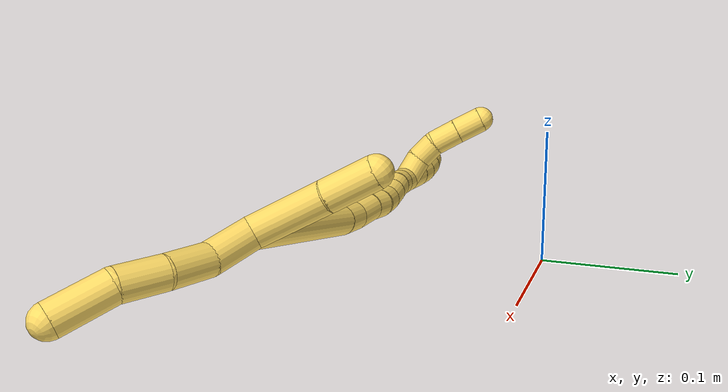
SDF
<sdf version="1.7">
 <world name="default">
  <model name="5">
   <static>0</static>
   <link name="5">
    <collision name="collision-cylinder-e_1_2_8">
     <pose>0.00466 -0.000231 -0.018948 3.12941 0.241116 3.04114</pose>
     <geometry><cylinder><radius>0.0125</radius><length>0.039028</length></cylinder></geometry>
     <surface>
      <friction><ode><mu>1.16</mu><mu2>1.16</mu2><slip1>0</slip1><slip2>0</slip2></ode></friction>
      <contact><ode><kp>1e+06</kp><kd>1</kd><max_vel>0</max_vel><min_depth>0.001</min_depth></ode></contact>
     </surface>
    </collision>
    <visual name="visual-cylinder-e_1_2_8">
     <pose>0.00466 -0.000231 -0.018948 3.12941 0.241116 3.04114</pose>
     <geometry><cylinder><radius>0.0125</radius><length>0.039028</length></cylinder></geometry>
     <material><ambient>1 0.858824 0.4 1</ambient></material>
    </visual>
    <collision name="collision-cylinder-e_2_8_9">
     <pose>0.014742 0.004141 -0.053784 -2.85963 0.316781 -1.6887</pose>
     <geometry><cylinder><radius>0.0125</radius><length>0.034814</length></cylinder></geometry>
     <surface>
      <friction><ode><mu>1.16</mu><mu2>1.16</mu2><slip1>0</slip1><slip2>0</slip2></ode></friction>
      <contact><ode><kp>1e+06</kp><kd>1</kd><max_vel>0</max_vel><min_depth>0.001</min_depth></ode></contact>
     </surface>
    </collision>
    <visual name="visual-cylinder-e_2_8_9">
     <pose>0.014742 0.004141 -0.053784 -2.85963 0.316781 -1.6887</pose>
     <geometry><cylinder><radius>0.0125</radius><length>0.034814</length></cylinder></geometry>
     <material><ambient>1 0.858824 0.4 1</ambient></material>
    </visual>
    <collision name="collision-cylinder-e_3_9_10">
     <pose>0.027975 0.011139 -0.084644 -2.98294 0.47569 -2.5079</pose>
     <geometry><cylinder><radius>0.0125</radius><length>0.034113</length></cylinder></geometry>
     <surface>
      <friction><ode><mu>1.16</mu><mu2>1.16</mu2><slip1>0</slip1><slip2>0</slip2></ode></friction>
      <contact><ode><kp>1e+06</kp><kd>1</kd><max_vel>0</max_vel><min_depth>0.001</min_depth></ode></contact>
     </surface>
    </collision>
    <visual name="visual-cylinder-e_3_9_10">
     <pose>0.027975 0.011139 -0.084644 -2.98294 0.47569 -2.5079</pose>
     <geometry><cylinder><radius>0.0125</radius><length>0.034113</length></cylinder></geometry>
     <material><ambient>1 0.858824 0.4 1</ambient></material>
    </visual>
    <collision name="collision-cylinder-e_4_10_6">
     <pose>0.043771 0.009986 -0.118737 2.95809 0.389588 2.26885</pose>
     <geometry><cylinder><radius>0.0125</radius><length>0.042045</length></cylinder></geometry>
     <surface>
      <friction><ode><mu>1.16</mu><mu2>1.16</mu2><slip1>0</slip1><slip2>0</slip2></ode></friction>
      <contact><ode><kp>1e+06</kp><kd>1</kd><max_vel>0</max_vel><min_depth>0.001</min_depth></ode></contact>
     </surface>
    </collision>
    <visual name="visual-cylinder-e_4_10_6">
     <pose>0.043771 0.009986 -0.118737 2.95809 0.389588 2.26885</pose>
     <geometry><cylinder><radius>0.0125</radius><length>0.042045</length></cylinder></geometry>
     <material><ambient>1 0.858824 0.4 1</ambient></material>
    </visual>
    <collision name="collision-cylinder-e_1_2_11">
     <pose>-0.019012 0.020008 0.013349 -0.982443 -0.668887 0.367597</pose>
     <geometry><cylinder><radius>0.0125</radius><length>0.061317</length></cylinder></geometry>
     <surface>
      <friction><ode><mu>1.16</mu><mu2>1.16</mu2><slip1>0</slip1><slip2>0</slip2></ode></friction>
      <contact><ode><kp>1e+06</kp><kd>1</kd><max_vel>0</max_vel><min_depth>0.001</min_depth></ode></contact>
     </surface>
    </collision>
    <visual name="visual-cylinder-e_1_2_11">
     <pose>-0.019012 0.020008 0.013349 -0.982443 -0.668887 0.367597</pose>
     <geometry><cylinder><radius>0.0125</radius><length>0.061317</length></cylinder></geometry>
     <material><ambient>1 0.858824 0.4 1</ambient></material>
    </visual>
    <collision name="collision-cylinder-e_2_11_5">
     <pose>-0.049828 0.051637 0.036682 -0.861024 -0.656449 0.310269</pose>
     <geometry><cylinder><radius>0.0125</radius><length>0.038683</length></cylinder></geometry>
     <surface>
      <friction><ode><mu>1.16</mu><mu2>1.16</mu2><slip1>0</slip1><slip2>0</slip2></ode></friction>
      <contact><ode><kp>1e+06</kp><kd>1</kd><max_vel>0</max_vel><min_depth>0.001</min_depth></ode></contact>
     </surface>
    </collision>
    <visual name="visual-cylinder-e_2_11_5">
     <pose>-0.049828 0.051637 0.036682 -0.861024 -0.656449 0.310269</pose>
     <geometry><cylinder><radius>0.0125</radius><length>0.038683</length></cylinder></geometry>
     <material><ambient>1 0.858824 0.4 1</ambient></material>
    </visual>
    <collision name="collision-cylinder-e_1_2_12">
     <pose>-0.011461 -0.030155 0.052346 0.522629 -0.187493 -0.050278</pose>
     <geometry><cylinder><radius>0.0125</radius><length>0.122977</length></cylinder></geometry>
     <surface>
      <friction><ode><mu>1.16</mu><mu2>1.16</mu2><slip1>0</slip1><slip2>0</slip2></ode></friction>
      <contact><ode><kp>1e+06</kp><kd>1</kd><max_vel>0</max_vel><min_depth>0.001</min_depth></ode></contact>
     </surface>
    </collision>
    <visual name="visual-cylinder-e_1_2_12">
     <pose>-0.011461 -0.030155 0.052346 0.522629 -0.187493 -0.050278</pose>
     <geometry><cylinder><radius>0.0125</radius><length>0.122977</length></cylinder></geometry>
     <material><ambient>1 0.858824 0.4 1</ambient></material>
    </visual>
    <collision name="collision-cylinder-e_2_12_13">
     <pose>-0.023923 -0.065562 0.115267 0.461069 -0.084555 -0.019857</pose>
     <geometry><cylinder><radius>0.0125</radius><length>0.023699</length></cylinder></geometry>
     <surface>
      <friction><ode><mu>1.16</mu><mu2>1.16</mu2><slip1>0</slip1><slip2>0</slip2></ode></friction>
      <contact><ode><kp>1e+06</kp><kd>1</kd><max_vel>0</max_vel><min_depth>0.001</min_depth></ode></contact>
     </surface>
    </collision>
    <visual name="visual-cylinder-e_2_12_13">
     <pose>-0.023923 -0.065562 0.115267 0.461069 -0.084555 -0.019857</pose>
     <geometry><cylinder><radius>0.0125</radius><length>0.023699</length></cylinder></geometry>
     <material><ambient>1 0.858824 0.4 1</ambient></material>
    </visual>
    <collision name="collision-cylinder-e_3_13_14">
     <pose>-0.026217 -0.075088 0.138721 0.320325 -0.095015 -0.015361</pose>
     <geometry><cylinder><radius>0.0125</radius><length>0.027261</length></cylinder></geometry>
     <surface>
      <friction><ode><mu>1.16</mu><mu2>1.16</mu2><slip1>0</slip1><slip2>0</slip2></ode></friction>
      <contact><ode><kp>1e+06</kp><kd>1</kd><max_vel>0</max_vel><min_depth>0.001</min_depth></ode></contact>
     </surface>
    </collision>
    <visual name="visual-cylinder-e_3_13_14">
     <pose>-0.026217 -0.075088 0.138721 0.320325 -0.095015 -0.015361</pose>
     <geometry><cylinder><radius>0.0125</radius><length>0.027261</length></cylinder></geometry>
     <material><ambient>1 0.858824 0.4 1</ambient></material>
    </visual>
    <collision name="collision-cylinder-e_4_14_15">
     <pose>-0.028881 -0.083756 0.161057 0.435104 -0.130732 -0.028938</pose>
     <geometry><cylinder><radius>0.0125</radius><length>0.021037</length></cylinder></geometry>
     <surface>
      <friction><ode><mu>1.16</mu><mu2>1.16</mu2><slip1>0</slip1><slip2>0</slip2></ode></friction>
      <contact><ode><kp>1e+06</kp><kd>1</kd><max_vel>0</max_vel><min_depth>0.001</min_depth></ode></contact>
     </surface>
    </collision>
    <visual name="visual-cylinder-e_4_14_15">
     <pose>-0.028881 -0.083756 0.161057 0.435104 -0.130732 -0.028938</pose>
     <geometry><cylinder><radius>0.0125</radius><length>0.021037</length></cylinder></geometry>
     <material><ambient>1 0.858824 0.4 1</ambient></material>
    </visual>
    <collision name="collision-cylinder-e_5_15_16">
     <pose>-0.029393 -0.093868 0.180881 0.503859 0.072507 0.018671</pose>
     <geometry><cylinder><radius>0.0125</radius><length>0.02374</length></cylinder></geometry>
     <surface>
      <friction><ode><mu>1.16</mu><mu2>1.16</mu2><slip1>0</slip1><slip2>0</slip2></ode></friction>
      <contact><ode><kp>1e+06</kp><kd>1</kd><max_vel>0</max_vel><min_depth>0.001</min_depth></ode></contact>
     </surface>
    </collision>
    <visual name="visual-cylinder-e_5_15_16">
     <pose>-0.029393 -0.093868 0.180881 0.503859 0.072507 0.018671</pose>
     <geometry><cylinder><radius>0.0125</radius><length>0.02374</length></cylinder></geometry>
     <material><ambient>1 0.858824 0.4 1</ambient></material>
    </visual>
    <collision name="collision-cylinder-e_6_16_17">
     <pose>-0.027265 -0.103299 0.201038 0.362668 0.120471 0.022114</pose>
     <geometry><cylinder><radius>0.0125</radius><length>0.021094</length></cylinder></geometry>
     <surface>
      <friction><ode><mu>1.16</mu><mu2>1.16</mu2><slip1>0</slip1><slip2>0</slip2></ode></friction>
      <contact><ode><kp>1e+06</kp><kd>1</kd><max_vel>0</max_vel><min_depth>0.001</min_depth></ode></contact>
     </surface>
    </collision>
    <visual name="visual-cylinder-e_6_16_17">
     <pose>-0.027265 -0.103299 0.201038 0.362668 0.120471 0.022114</pose>
     <geometry><cylinder><radius>0.0125</radius><length>0.021094</length></cylinder></geometry>
     <material><ambient>1 0.858824 0.4 1</ambient></material>
    </visual>
    <collision name="collision-cylinder-e_7_17_18">
     <pose>-0.024469 -0.110783 0.220005 0.389724 0.152905 0.030235</pose>
     <geometry><cylinder><radius>0.0125</radius><length>0.020077</length></cylinder></geometry>
     <surface>
      <friction><ode><mu>1.16</mu><mu2>1.16</mu2><slip1>0</slip1><slip2>0</slip2></ode></friction>
      <contact><ode><kp>1e+06</kp><kd>1</kd><max_vel>0</max_vel><min_depth>0.001</min_depth></ode></contact>
     </surface>
    </collision>
    <visual name="visual-cylinder-e_7_17_18">
     <pose>-0.024469 -0.110783 0.220005 0.389724 0.152905 0.030235</pose>
     <geometry><cylinder><radius>0.0125</radius><length>0.020077</length></cylinder></geometry>
     <material><ambient>1 0.858824 0.4 1</ambient></material>
    </visual>
    <collision name="collision-cylinder-e_8_18_19">
     <pose>-0.022001 -0.119791 0.237698 0.551493 0.093579 0.026497</pose>
     <geometry><cylinder><radius>0.0125</radius><length>0.020084</length></cylinder></geometry>
     <surface>
      <friction><ode><mu>1.16</mu><mu2>1.16</mu2><slip1>0</slip1><slip2>0</slip2></ode></friction>
      <contact><ode><kp>1e+06</kp><kd>1</kd><max_vel>0</max_vel><min_depth>0.001</min_depth></ode></contact>
     </surface>
    </collision>
    <visual name="visual-cylinder-e_8_18_19">
     <pose>-0.022001 -0.119791 0.237698 0.551493 0.093579 0.026497</pose>
     <geometry><cylinder><radius>0.0125</radius><length>0.020084</length></cylinder></geometry>
     <material><ambient>1 0.858824 0.4 1</ambient></material>
    </visual>
    <collision name="collision-cylinder-e_9_19_1">
     <pose>-0.020983 -0.129516 0.255168 0.464573 0.007979 0.001887</pose>
     <geometry><cylinder><radius>0.0125</radius><length>0.020031</length></cylinder></geometry>
     <surface>
      <friction><ode><mu>1.16</mu><mu2>1.16</mu2><slip1>0</slip1><slip2>0</slip2></ode></friction>
      <contact><ode><kp>1e+06</kp><kd>1</kd><max_vel>0</max_vel><min_depth>0.001</min_depth></ode></contact>
     </surface>
    </collision>
    <visual name="visual-cylinder-e_9_19_1">
     <pose>-0.020983 -0.129516 0.255168 0.464573 0.007979 0.001887</pose>
     <geometry><cylinder><radius>0.0125</radius><length>0.020031</length></cylinder></geometry>
     <material><ambient>1 0.858824 0.4 1</ambient></material>
    </visual>
    <collision name="collision-cylinder-e_1_1_20">
     <pose>-0.02152 -0.125755 0.273343 -0.729762 -0.04984 0.019042</pose>
     <geometry><cylinder><radius>0.0125</radius><length>0.024775</length></cylinder></geometry>
     <surface>
      <friction><ode><mu>1.16</mu><mu2>1.16</mu2><slip1>0</slip1><slip2>0</slip2></ode></friction>
      <contact><ode><kp>1e+06</kp><kd>1</kd><max_vel>0</max_vel><min_depth>0.001</min_depth></ode></contact>
     </surface>
    </collision>
    <visual name="visual-cylinder-e_1_1_20">
     <pose>-0.02152 -0.125755 0.273343 -0.729762 -0.04984 0.019042</pose>
     <geometry><cylinder><radius>0.0125</radius><length>0.024775</length></cylinder></geometry>
     <material><ambient>1 0.858824 0.4 1</ambient></material>
    </visual>
    <collision name="collision-cylinder-e_2_20_21">
     <pose>-0.025837 -0.109418 0.289076 -0.892969 -0.342237 0.16508</pose>
     <geometry><cylinder><radius>0.0125</radius><length>0.022048</length></cylinder></geometry>
     <surface>
      <friction><ode><mu>1.16</mu><mu2>1.16</mu2><slip1>0</slip1><slip2>0</slip2></ode></friction>
      <contact><ode><kp>1e+06</kp><kd>1</kd><max_vel>0</max_vel><min_depth>0.001</min_depth></ode></contact>
     </surface>
    </collision>
    <visual name="visual-cylinder-e_2_20_21">
     <pose>-0.025837 -0.109418 0.289076 -0.892969 -0.342237 0.16508</pose>
     <geometry><cylinder><radius>0.0125</radius><length>0.022048</length></cylinder></geometry>
     <material><ambient>1 0.858824 0.4 1</ambient></material>
    </visual>
    <collision name="collision-cylinder-e_3_21_22">
     <pose>-0.037171 -0.093665 0.30331 -0.781709 -0.611867 0.258839</pose>
     <geometry><cylinder><radius>0.0125</radius><length>0.026581</length></cylinder></geometry>
     <surface>
      <friction><ode><mu>1.16</mu><mu2>1.16</mu2><slip1>0</slip1><slip2>0</slip2></ode></friction>
      <contact><ode><kp>1e+06</kp><kd>1</kd><max_vel>0</max_vel><min_depth>0.001</min_depth></ode></contact>
     </surface>
    </collision>
    <visual name="visual-cylinder-e_3_21_22">
     <pose>-0.037171 -0.093665 0.30331 -0.781709 -0.611867 0.258839</pose>
     <geometry><cylinder><radius>0.0125</radius><length>0.026581</length></cylinder></geometry>
     <material><ambient>1 0.858824 0.4 1</ambient></material>
    </visual>
    <collision name="collision-cylinder-e_4_22_4">
     <pose>-0.052656 -0.078595 0.3188 -0.761421 -0.631537 0.260039</pose>
     <geometry><cylinder><radius>0.0125</radius><length>0.026596</length></cylinder></geometry>
     <surface>
      <friction><ode><mu>1.16</mu><mu2>1.16</mu2><slip1>0</slip1><slip2>0</slip2></ode></friction>
      <contact><ode><kp>1e+06</kp><kd>1</kd><max_vel>0</max_vel><min_depth>0.001</min_depth></ode></contact>
     </surface>
    </collision>
    <visual name="visual-cylinder-e_4_22_4">
     <pose>-0.052656 -0.078595 0.3188 -0.761421 -0.631537 0.260039</pose>
     <geometry><cylinder><radius>0.0125</radius><length>0.026596</length></cylinder></geometry>
     <material><ambient>1 0.858824 0.4 1</ambient></material>
    </visual>
    <collision name="collision-cylinder-e_1_1_23">
     <pose>-0.021853 -0.139456 0.276592 0.41214 -0.069672 -0.01457</pose>
     <geometry><cylinder><radius>0.0125</radius><length>0.027287</length></cylinder></geometry>
     <surface>
      <friction><ode><mu>1.16</mu><mu2>1.16</mu2><slip1>0</slip1><slip2>0</slip2></ode></friction>
      <contact><ode><kp>1e+06</kp><kd>1</kd><max_vel>0</max_vel><min_depth>0.001</min_depth></ode></contact>
     </surface>
    </collision>
    <visual name="visual-cylinder-e_1_1_23">
     <pose>-0.021853 -0.139456 0.276592 0.41214 -0.069672 -0.01457</pose>
     <geometry><cylinder><radius>0.0125</radius><length>0.027287</length></cylinder></geometry>
     <material><ambient>1 0.858824 0.4 1</ambient></material>
    </visual>
    <collision name="collision-cylinder-e_2_23_24">
     <pose>-0.022776 -0.150346 0.300208 0.453963 0.002188 0.000505</pose>
     <geometry><cylinder><radius>0.0125</radius><length>0.024802</length></cylinder></geometry>
     <surface>
      <friction><ode><mu>1.16</mu><mu2>1.16</mu2><slip1>0</slip1><slip2>0</slip2></ode></friction>
      <contact><ode><kp>1e+06</kp><kd>1</kd><max_vel>0</max_vel><min_depth>0.001</min_depth></ode></contact>
     </surface>
    </collision>
    <visual name="visual-cylinder-e_2_23_24">
     <pose>-0.022776 -0.150346 0.300208 0.453963 0.002188 0.000505</pose>
     <geometry><cylinder><radius>0.0125</radius><length>0.024802</length></cylinder></geometry>
     <material><ambient>1 0.858824 0.4 1</ambient></material>
    </visual>
    <collision name="collision-cylinder-e_3_24_25">
     <pose>-0.021327 -0.161152 0.323655 0.411438 0.105507 0.022036</pose>
     <geometry><cylinder><radius>0.0125</radius><length>0.026994</length></cylinder></geometry>
     <surface>
      <friction><ode><mu>1.16</mu><mu2>1.16</mu2><slip1>0</slip1><slip2>0</slip2></ode></friction>
      <contact><ode><kp>1e+06</kp><kd>1</kd><max_vel>0</max_vel><min_depth>0.001</min_depth></ode></contact>
     </surface>
    </collision>
    <visual name="visual-cylinder-e_3_24_25">
     <pose>-0.021327 -0.161152 0.323655 0.411438 0.105507 0.022036</pose>
     <geometry><cylinder><radius>0.0125</radius><length>0.026994</length></cylinder></geometry>
     <material><ambient>1 0.858824 0.4 1</ambient></material>
    </visual>
    <collision name="collision-cylinder-e_4_25_3">
     <pose>-0.017571 -0.170527 0.345331 0.404018 0.225127 0.046294</pose>
     <geometry><cylinder><radius>0.0125</radius><length>0.020916</length></cylinder></geometry>
     <surface>
      <friction><ode><mu>1.16</mu><mu2>1.16</mu2><slip1>0</slip1><slip2>0</slip2></ode></friction>
      <contact><ode><kp>1e+06</kp><kd>1</kd><max_vel>0</max_vel><min_depth>0.001</min_depth></ode></contact>
     </surface>
    </collision>
    <visual name="visual-cylinder-e_4_25_3">
     <pose>-0.017571 -0.170527 0.345331 0.404018 0.225127 0.046294</pose>
     <geometry><cylinder><radius>0.0125</radius><length>0.020916</length></cylinder></geometry>
     <material><ambient>1 0.858824 0.4 1</ambient></material>
    </visual>
    <collision name="collision-sphere-3">
     <pose>-0.015237 -0.174535 0.354704 0 -0 0</pose>
     <geometry><sphere><radius>0.0125</radius></sphere></geometry>
     <surface>
      <friction><ode><mu>1.16</mu><mu2>1.16</mu2><slip1>0</slip1><slip2>0</slip2></ode></friction>
      <contact><ode><kp>1e+06</kp><kd>1</kd><max_vel>0</max_vel><min_depth>0.001</min_depth></ode></contact>
     </surface>
    </collision>
    <visual name="visual-sphere-3">
     <pose>-0.015237 -0.174535 0.354704 0 -0 0</pose>
     <geometry><sphere><radius>0.0125</radius></sphere></geometry>
     <material><ambient>1 0.858824 0.4 1</ambient></material>
    </visual>
    <collision name="collision-sphere-25">
     <pose>-0.019906 -0.16652 0.335957 0 -0 0</pose>
     <geometry><sphere><radius>0.0125</radius></sphere></geometry>
     <surface>
      <friction><ode><mu>1.16</mu><mu2>1.16</mu2><slip1>0</slip1><slip2>0</slip2></ode></friction>
      <contact><ode><kp>1e+06</kp><kd>1</kd><max_vel>0</max_vel><min_depth>0.001</min_depth></ode></contact>
     </surface>
    </collision>
    <visual name="visual-sphere-25">
     <pose>-0.019906 -0.16652 0.335957 0 -0 0</pose>
     <geometry><sphere><radius>0.0125</radius></sphere></geometry>
     <material><ambient>1 0.858824 0.4 1</ambient></material>
    </visual>
    <collision name="collision-sphere-24">
     <pose>-0.022749 -0.155784 0.311353 0 -0 0</pose>
     <geometry><sphere><radius>0.0125</radius></sphere></geometry>
     <surface>
      <friction><ode><mu>1.16</mu><mu2>1.16</mu2><slip1>0</slip1><slip2>0</slip2></ode></friction>
      <contact><ode><kp>1e+06</kp><kd>1</kd><max_vel>0</max_vel><min_depth>0.001</min_depth></ode></contact>
     </surface>
    </collision>
    <visual name="visual-sphere-24">
     <pose>-0.022749 -0.155784 0.311353 0 -0 0</pose>
     <geometry><sphere><radius>0.0125</radius></sphere></geometry>
     <material><ambient>1 0.858824 0.4 1</ambient></material>
    </visual>
    <collision name="collision-sphere-23">
     <pose>-0.022803 -0.144908 0.289063 0 -0 0</pose>
     <geometry><sphere><radius>0.0125</radius></sphere></geometry>
     <surface>
      <friction><ode><mu>1.16</mu><mu2>1.16</mu2><slip1>0</slip1><slip2>0</slip2></ode></friction>
      <contact><ode><kp>1e+06</kp><kd>1</kd><max_vel>0</max_vel><min_depth>0.001</min_depth></ode></contact>
     </surface>
    </collision>
    <visual name="visual-sphere-23">
     <pose>-0.022803 -0.144908 0.289063 0 -0 0</pose>
     <geometry><sphere><radius>0.0125</radius></sphere></geometry>
     <material><ambient>1 0.858824 0.4 1</ambient></material>
    </visual>
    <collision name="collision-sphere-4">
     <pose>-0.060507 -0.071189 0.326569 0 -0 0</pose>
     <geometry><sphere><radius>0.0125</radius></sphere></geometry>
     <surface>
      <friction><ode><mu>1.16</mu><mu2>1.16</mu2><slip1>0</slip1><slip2>0</slip2></ode></friction>
      <contact><ode><kp>1e+06</kp><kd>1</kd><max_vel>0</max_vel><min_depth>0.001</min_depth></ode></contact>
     </surface>
    </collision>
    <visual name="visual-sphere-4">
     <pose>-0.060507 -0.071189 0.326569 0 -0 0</pose>
     <geometry><sphere><radius>0.0125</radius></sphere></geometry>
     <material><ambient>1 0.858824 0.4 1</ambient></material>
    </visual>
    <collision name="collision-sphere-22">
     <pose>-0.044805 -0.086 0.311031 0 -0 0</pose>
     <geometry><sphere><radius>0.0125</radius></sphere></geometry>
     <surface>
      <friction><ode><mu>1.16</mu><mu2>1.16</mu2><slip1>0</slip1><slip2>0</slip2></ode></friction>
      <contact><ode><kp>1e+06</kp><kd>1</kd><max_vel>0</max_vel><min_depth>0.001</min_depth></ode></contact>
     </surface>
    </collision>
    <visual name="visual-sphere-22">
     <pose>-0.044805 -0.086 0.311031 0 -0 0</pose>
     <geometry><sphere><radius>0.0125</radius></sphere></geometry>
     <material><ambient>1 0.858824 0.4 1</ambient></material>
    </visual>
    <collision name="collision-sphere-21">
     <pose>-0.029537 -0.101329 0.295588 0 -0 0</pose>
     <geometry><sphere><radius>0.0125</radius></sphere></geometry>
     <surface>
      <friction><ode><mu>1.16</mu><mu2>1.16</mu2><slip1>0</slip1><slip2>0</slip2></ode></friction>
      <contact><ode><kp>1e+06</kp><kd>1</kd><max_vel>0</max_vel><min_depth>0.001</min_depth></ode></contact>
     </surface>
    </collision>
    <visual name="visual-sphere-21">
     <pose>-0.029537 -0.101329 0.295588 0 -0 0</pose>
     <geometry><sphere><radius>0.0125</radius></sphere></geometry>
     <material><ambient>1 0.858824 0.4 1</ambient></material>
    </visual>
    <collision name="collision-sphere-20">
     <pose>-0.022138 -0.117507 0.282564 0 -0 0</pose>
     <geometry><sphere><radius>0.0125</radius></sphere></geometry>
     <surface>
      <friction><ode><mu>1.16</mu><mu2>1.16</mu2><slip1>0</slip1><slip2>0</slip2></ode></friction>
      <contact><ode><kp>1e+06</kp><kd>1</kd><max_vel>0</max_vel><min_depth>0.001</min_depth></ode></contact>
     </surface>
    </collision>
    <visual name="visual-sphere-20">
     <pose>-0.022138 -0.117507 0.282564 0 -0 0</pose>
     <geometry><sphere><radius>0.0125</radius></sphere></geometry>
     <material><ambient>1 0.858824 0.4 1</ambient></material>
    </visual>
    <collision name="collision-sphere-11">
     <pose>-0.038023 0.040015 0.026697 0 -0 0</pose>
     <geometry><sphere><radius>0.0125</radius></sphere></geometry>
     <surface>
      <friction><ode><mu>1.16</mu><mu2>1.16</mu2><slip1>0</slip1><slip2>0</slip2></ode></friction>
      <contact><ode><kp>1e+06</kp><kd>1</kd><max_vel>0</max_vel><min_depth>0.001</min_depth></ode></contact>
     </surface>
    </collision>
    <visual name="visual-sphere-11">
     <pose>-0.038023 0.040015 0.026697 0 -0 0</pose>
     <geometry><sphere><radius>0.0125</radius></sphere></geometry>
     <material><ambient>1 0.858824 0.4 1</ambient></material>
    </visual>
    <collision name="collision-sphere-6">
     <pose>0.051755 0.006437 -0.137858 0 -0 0</pose>
     <geometry><sphere><radius>0.0125</radius></sphere></geometry>
     <surface>
      <friction><ode><mu>1.16</mu><mu2>1.16</mu2><slip1>0</slip1><slip2>0</slip2></ode></friction>
      <contact><ode><kp>1e+06</kp><kd>1</kd><max_vel>0</max_vel><min_depth>0.001</min_depth></ode></contact>
     </surface>
    </collision>
    <visual name="visual-sphere-6">
     <pose>0.051755 0.006437 -0.137858 0 -0 0</pose>
     <geometry><sphere><radius>0.0125</radius></sphere></geometry>
     <material><ambient>1 0.858824 0.4 1</ambient></material>
    </visual>
    <collision name="collision-sphere-10">
     <pose>0.035786 0.013534 -0.099616 0 -0 0</pose>
     <geometry><sphere><radius>0.0125</radius></sphere></geometry>
     <surface>
      <friction><ode><mu>1.16</mu><mu2>1.16</mu2><slip1>0</slip1><slip2>0</slip2></ode></friction>
      <contact><ode><kp>1e+06</kp><kd>1</kd><max_vel>0</max_vel><min_depth>0.001</min_depth></ode></contact>
     </surface>
    </collision>
    <visual name="visual-sphere-10">
     <pose>0.035786 0.013534 -0.099616 0 -0 0</pose>
     <geometry><sphere><radius>0.0125</radius></sphere></geometry>
     <material><ambient>1 0.858824 0.4 1</ambient></material>
    </visual>
    <collision name="collision-sphere-9">
     <pose>0.020164 0.008743 -0.069671 0 -0 0</pose>
     <geometry><sphere><radius>0.0125</radius></sphere></geometry>
     <surface>
      <friction><ode><mu>1.16</mu><mu2>1.16</mu2><slip1>0</slip1><slip2>0</slip2></ode></friction>
      <contact><ode><kp>1e+06</kp><kd>1</kd><max_vel>0</max_vel><min_depth>0.001</min_depth></ode></contact>
     </surface>
    </collision>
    <visual name="visual-sphere-9">
     <pose>0.020164 0.008743 -0.069671 0 -0 0</pose>
     <geometry><sphere><radius>0.0125</radius></sphere></geometry>
     <material><ambient>1 0.858824 0.4 1</ambient></material>
    </visual>
    <collision name="collision-sphere-2">
     <geometry><sphere><radius>0.0125</radius></sphere></geometry>
     <surface>
      <friction><ode><mu>1.16</mu><mu2>1.16</mu2><slip1>0</slip1><slip2>0</slip2></ode></friction>
      <contact><ode><kp>1e+06</kp><kd>1</kd><max_vel>0</max_vel><min_depth>0.001</min_depth></ode></contact>
     </surface>
    </collision>
    <visual name="visual-sphere-2">
     <geometry><sphere><radius>0.0125</radius></sphere></geometry>
     <material><ambient>1 0.858824 0.4 1</ambient></material>
    </visual>
    <collision name="collision-sphere-19">
     <pose>-0.021063 -0.125029 0.246214 0 -0 0</pose>
     <geometry><sphere><radius>0.0125</radius></sphere></geometry>
     <surface>
      <friction><ode><mu>1.16</mu><mu2>1.16</mu2><slip1>0</slip1><slip2>0</slip2></ode></friction>
      <contact><ode><kp>1e+06</kp><kd>1</kd><max_vel>0</max_vel><min_depth>0.001</min_depth></ode></contact>
     </surface>
    </collision>
    <visual name="visual-sphere-19">
     <pose>-0.021063 -0.125029 0.246214 0 -0 0</pose>
     <geometry><sphere><radius>0.0125</radius></sphere></geometry>
     <material><ambient>1 0.858824 0.4 1</ambient></material>
    </visual>
    <collision name="collision-sphere-8">
     <pose>0.009319 -0.000462 -0.037896 0 -0 0</pose>
     <geometry><sphere><radius>0.0125</radius></sphere></geometry>
     <surface>
      <friction><ode><mu>1.16</mu><mu2>1.16</mu2><slip1>0</slip1><slip2>0</slip2></ode></friction>
      <contact><ode><kp>1e+06</kp><kd>1</kd><max_vel>0</max_vel><min_depth>0.001</min_depth></ode></contact>
     </surface>
    </collision>
    <visual name="visual-sphere-8">
     <pose>0.009319 -0.000462 -0.037896 0 -0 0</pose>
     <geometry><sphere><radius>0.0125</radius></sphere></geometry>
     <material><ambient>1 0.858824 0.4 1</ambient></material>
    </visual>
    <collision name="collision-sphere-5">
     <pose>-0.061632 0.063259 0.046666 0 -0 0</pose>
     <geometry><sphere><radius>0.0125</radius></sphere></geometry>
     <surface>
      <friction><ode><mu>1.16</mu><mu2>1.16</mu2><slip1>0</slip1><slip2>0</slip2></ode></friction>
      <contact><ode><kp>1e+06</kp><kd>1</kd><max_vel>0</max_vel><min_depth>0.001</min_depth></ode></contact>
     </surface>
    </collision>
    <visual name="visual-sphere-5">
     <pose>-0.061632 0.063259 0.046666 0 -0 0</pose>
     <geometry><sphere><radius>0.0125</radius></sphere></geometry>
     <material><ambient>1 0.858824 0.4 1</ambient></material>
    </visual>
    <collision name="collision-sphere-12">
     <pose>-0.022922 -0.060309 0.104693 0 -0 0</pose>
     <geometry><sphere><radius>0.0125</radius></sphere></geometry>
     <surface>
      <friction><ode><mu>1.16</mu><mu2>1.16</mu2><slip1>0</slip1><slip2>0</slip2></ode></friction>
      <contact><ode><kp>1e+06</kp><kd>1</kd><max_vel>0</max_vel><min_depth>0.001</min_depth></ode></contact>
     </surface>
    </collision>
    <visual name="visual-sphere-12">
     <pose>-0.022922 -0.060309 0.104693 0 -0 0</pose>
     <geometry><sphere><radius>0.0125</radius></sphere></geometry>
     <material><ambient>1 0.858824 0.4 1</ambient></material>
    </visual>
    <collision name="collision-sphere-13">
     <pose>-0.024924 -0.070816 0.125842 0 -0 0</pose>
     <geometry><sphere><radius>0.0125</radius></sphere></geometry>
     <surface>
      <friction><ode><mu>1.16</mu><mu2>1.16</mu2><slip1>0</slip1><slip2>0</slip2></ode></friction>
      <contact><ode><kp>1e+06</kp><kd>1</kd><max_vel>0</max_vel><min_depth>0.001</min_depth></ode></contact>
     </surface>
    </collision>
    <visual name="visual-sphere-13">
     <pose>-0.024924 -0.070816 0.125842 0 -0 0</pose>
     <geometry><sphere><radius>0.0125</radius></sphere></geometry>
     <material><ambient>1 0.858824 0.4 1</ambient></material>
    </visual>
    <collision name="collision-sphere-14">
     <pose>-0.02751 -0.079361 0.1516 0 -0 0</pose>
     <geometry><sphere><radius>0.0125</radius></sphere></geometry>
     <surface>
      <friction><ode><mu>1.16</mu><mu2>1.16</mu2><slip1>0</slip1><slip2>0</slip2></ode></friction>
      <contact><ode><kp>1e+06</kp><kd>1</kd><max_vel>0</max_vel><min_depth>0.001</min_depth></ode></contact>
     </surface>
    </collision>
    <visual name="visual-sphere-14">
     <pose>-0.02751 -0.079361 0.1516 0 -0 0</pose>
     <geometry><sphere><radius>0.0125</radius></sphere></geometry>
     <material><ambient>1 0.858824 0.4 1</ambient></material>
    </visual>
    <collision name="collision-sphere-15">
     <pose>-0.030253 -0.088152 0.170514 0 -0 0</pose>
     <geometry><sphere><radius>0.0125</radius></sphere></geometry>
     <surface>
      <friction><ode><mu>1.16</mu><mu2>1.16</mu2><slip1>0</slip1><slip2>0</slip2></ode></friction>
      <contact><ode><kp>1e+06</kp><kd>1</kd><max_vel>0</max_vel><min_depth>0.001</min_depth></ode></contact>
     </surface>
    </collision>
    <visual name="visual-sphere-15">
     <pose>-0.030253 -0.088152 0.170514 0 -0 0</pose>
     <geometry><sphere><radius>0.0125</radius></sphere></geometry>
     <material><ambient>1 0.858824 0.4 1</ambient></material>
    </visual>
    <collision name="collision-sphere-16">
     <pose>-0.028533 -0.099584 0.191249 0 -0 0</pose>
     <geometry><sphere><radius>0.0125</radius></sphere></geometry>
     <surface>
      <friction><ode><mu>1.16</mu><mu2>1.16</mu2><slip1>0</slip1><slip2>0</slip2></ode></friction>
      <contact><ode><kp>1e+06</kp><kd>1</kd><max_vel>0</max_vel><min_depth>0.001</min_depth></ode></contact>
     </surface>
    </collision>
    <visual name="visual-sphere-16">
     <pose>-0.028533 -0.099584 0.191249 0 -0 0</pose>
     <geometry><sphere><radius>0.0125</radius></sphere></geometry>
     <material><ambient>1 0.858824 0.4 1</ambient></material>
    </visual>
    <collision name="collision-sphere-17">
     <pose>-0.025998 -0.107013 0.210828 0 -0 0</pose>
     <geometry><sphere><radius>0.0125</radius></sphere></geometry>
     <surface>
      <friction><ode><mu>1.16</mu><mu2>1.16</mu2><slip1>0</slip1><slip2>0</slip2></ode></friction>
      <contact><ode><kp>1e+06</kp><kd>1</kd><max_vel>0</max_vel><min_depth>0.001</min_depth></ode></contact>
     </surface>
    </collision>
    <visual name="visual-sphere-17">
     <pose>-0.025998 -0.107013 0.210828 0 -0 0</pose>
     <geometry><sphere><radius>0.0125</radius></sphere></geometry>
     <material><ambient>1 0.858824 0.4 1</ambient></material>
    </visual>
    <collision name="collision-sphere-18">
     <pose>-0.02294 -0.114552 0.229182 0 -0 0</pose>
     <geometry><sphere><radius>0.0125</radius></sphere></geometry>
     <surface>
      <friction><ode><mu>1.16</mu><mu2>1.16</mu2><slip1>0</slip1><slip2>0</slip2></ode></friction>
      <contact><ode><kp>1e+06</kp><kd>1</kd><max_vel>0</max_vel><min_depth>0.001</min_depth></ode></contact>
     </surface>
    </collision>
    <visual name="visual-sphere-18">
     <pose>-0.02294 -0.114552 0.229182 0 -0 0</pose>
     <geometry><sphere><radius>0.0125</radius></sphere></geometry>
     <material><ambient>1 0.858824 0.4 1</ambient></material>
    </visual>
    <collision name="collision-sphere-1">
     <pose>-0.020903 -0.134004 0.264121 0 -0 0</pose>
     <geometry><sphere><radius>0.0125</radius></sphere></geometry>
     <surface>
      <friction><ode><mu>1.16</mu><mu2>1.16</mu2><slip1>0</slip1><slip2>0</slip2></ode></friction>
      <contact><ode><kp>1e+06</kp><kd>1</kd><max_vel>0</max_vel><min_depth>0.001</min_depth></ode></contact>
     </surface>
    </collision>
    <visual name="visual-sphere-1">
     <pose>-0.020903 -0.134004 0.264121 0 -0 0</pose>
     <geometry><sphere><radius>0.0125</radius></sphere></geometry>
     <material><ambient>1 0.858824 0.4 1</ambient></material>
    </visual>
    <inertial>
     <pose>-0.014832 -0.056137 0.122082 0 -0 0</pose>
     <mass>0.75</mass>
     <inertia>
      <ixx>0.000189</ixx>
      <ixy>0</ixy>
      <ixz>0</ixz>
      <iyy>0.000201</iyy>
      <iyz>0</iyz>
      <izz>0.000131</izz>
     </inertia>
    </inertial>
   </link>
   <pose>0.117364 -0.185179 0.037514 1.16102 -0.400983 -1.58111</pose>
  </model>
 </world>
</sdf>
